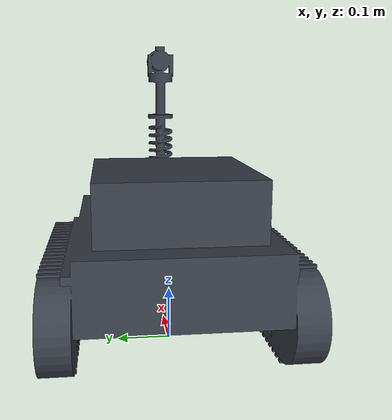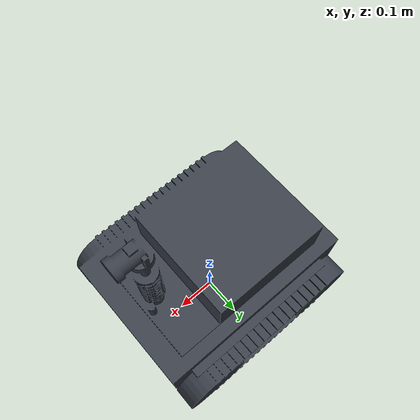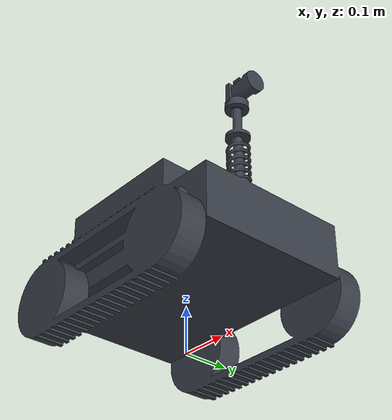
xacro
<?xml version="1.0"?>
<robot xmlns:xacro="http://www.ros.org/wiki/xacro" name="sih_bot">

  <!-- ============================ CONSTANTS ============================== -->
  <xacro:property name="PI" value="3.1415926535897931"/>
  <xacro:property name="robot_mass" value="25.0"/>
  <xacro:property name="wheel_radius" value="0.075"/>
  <xacro:property name="wheel_width" value="0.07"/>
  <xacro:property name="wheelbase" value="0.32"/>
  <xacro:property name="track_width" value="0.38"/>

  <!-- ============================ MATERIALS ============================== -->
  <material name="sih_charcoal">
    <color rgba="0.22 0.24 0.28 1.0"/>
  </material>
  <material name="signal_orange">
    <color rgba="1.0 0.45 0.0 1.0"/>
  </material>

  <!-- ============================ BASE FOOTPRINT ========================= -->
  <link name="base_footprint"/>

  <joint name="base_footprint_joint" type="fixed">
    <parent link="base_footprint"/>
    <child link="base_link"/>
    <origin xyz="0 0 ${wheel_radius + 0.02}" rpy="0 0 0"/>
  </joint>

  <!-- ============================ CHASSIS (SIH BOT MESH) ================= -->
  <link name="base_link">
    <visual>
      <origin xyz="0 0 -0.05" rpy="0 0 0"/>
      <geometry>
        <mesh filename="package://sih_bot/meshes/sih_bot.dae" scale="1.0 1.0 1.0"/>
      </geometry>
      <material name="sih_charcoal"/>
    </visual>
    <collision>
      <origin xyz="0 0 0.08" rpy="0 0 0"/>
      <geometry>
        <box size="0.45 0.35 0.16"/>
      </geometry>
    </collision>
    <inertial>
      <!-- Lowered Center of Mass for rock-solid stability -->
      <origin xyz="0 0 -0.04" rpy="0 0 0"/>
      <mass value="${robot_mass}"/>
      <inertia ixx="0.65" ixy="0.0" ixz="0.0" iyy="0.75" iyz="0.0" izz="0.95"/>
    </inertial>
  </link>

  <gazebo reference="base_link">
    <visual>
      <material>
        <ambient>0.25 0.28 0.32 1.0</ambient>
        <diffuse>0.35 0.38 0.42 1.0</diffuse>
        <specular>0.6 0.6 0.6 1.0</specular>
      </material>
    </visual>
  </gazebo>

  <!-- ============================ 4-WHEEL DRIVE TRACTION MACRO =========== -->
  <xacro:macro name="traction_wheel" params="prefix parent x_pos y_pos">
    <link name="${prefix}_wheel">
      <collision>
        <origin xyz="0 0 0" rpy="${PI/2} 0 0"/>
        <geometry>
          <cylinder radius="${wheel_radius}" length="${wheel_width}"/>
        </geometry>
      </collision>
      <inertial>
        <origin xyz="0 0 0" rpy="0 0 0"/>
        <mass value="1.5"/>
        <inertia ixx="0.004" ixy="0" ixz="0" iyy="0.004" iyz="0" izz="0.007"/>
      </inertial>
    </link>

    <joint name="${prefix}_wheel_joint" type="continuous">
      <parent link="${parent}"/>
      <child link="${prefix}_wheel"/>
      <origin xyz="${x_pos} ${y_pos} -0.02" rpy="0 0 0"/>
      <axis xyz="0 1 0"/>
      <limit effort="400.0" velocity="35.0"/>
      <dynamics damping="0.05" friction="0.02"/>
    </joint>

    <gazebo reference="${prefix}_wheel">
      <mu1>1.8</mu1>
      <mu2>0.05</mu2>
      <kp>1000000.0</kp>
      <kd>100.0</kd>
    </gazebo>
  </xacro:macro>

  <xacro:traction_wheel prefix="left_front"  parent="base_link" x_pos="${wheelbase/2}"  y_pos="${track_width/2}"/>
  <xacro:traction_wheel prefix="left_rear"   parent="base_link" x_pos="${-wheelbase/2}" y_pos="${track_width/2}"/>
  <xacro:traction_wheel prefix="right_front" parent="base_link" x_pos="${wheelbase/2}"  y_pos="${-track_width/2}"/>
  <xacro:traction_wheel prefix="right_rear"  parent="base_link" x_pos="${-wheelbase/2}" y_pos="${-track_width/2}"/>

  <!-- ============================ SENSORS ================================ -->
  <!-- 1. IMU -->
  <link name="imu_link">
    <inertial>
      <mass value="0.05"/>
      <inertia ixx="0.0001" ixy="0" ixz="0" iyy="0.0001" iyz="0" izz="0.0001"/>
    </inertial>
  </link>
  <joint name="imu_joint" type="fixed">
    <parent link="base_link"/>
    <child link="imu_link"/>
    <origin xyz="0 0 0.10" rpy="0 0 0"/>
  </joint>

  <!-- 2. LiDAR (360 SLAM) -->
  <link name="lidar_link">
    <inertial>
      <mass value="0.2"/>
      <inertia ixx="0.001" ixy="0" ixz="0" iyy="0.001" iyz="0" izz="0.001"/>
    </inertial>
  </link>
  <joint name="lidar_joint" type="fixed">
    <parent link="base_link"/>
    <child link="lidar_link"/>
    <origin xyz="0 0 0.46" rpy="0 0 0"/>
  </joint>

  <!-- 3. RGB-D Camera -->
  <link name="camera_link">
    <inertial>
      <mass value="0.15"/>
      <inertia ixx="0.001" ixy="0" ixz="0" iyy="0.001" iyz="0" izz="0.001"/>
    </inertial>
  </link>
  <joint name="camera_joint" type="fixed">
    <parent link="base_link"/>
    <child link="camera_link"/>
    <origin xyz="0.22 0 0.32" rpy="0 0.08 0"/>
  </joint>

  <link name="camera_optical_link"/>
  <joint name="camera_optical_joint" type="fixed">
    <parent link="camera_link"/>
    <child link="camera_optical_link"/>
    <origin xyz="0 0 0" rpy="${-PI/2} 0 ${-PI/2}"/>
  </joint>

  <!-- ============================ GAZEBO SENSORS & PLUGINS =============== -->
  <!-- IMU Sensor -->
  <gazebo reference="base_footprint">
    <sensor name="imu_sensor" type="imu">
      <always_on>true</always_on>
      <update_rate>100</update_rate>
      <topic>/imu/data</topic>
      <gz_frame_id>imu_link</gz_frame_id>
      <imu>
        <angular_velocity><x><noise type="gaussian"><mean>0</mean><stddev>0.001</stddev></noise></x></angular_velocity>
        <linear_acceleration><x><noise type="gaussian"><mean>0</mean><stddev>0.01</stddev></noise></x></linear_acceleration>
      </imu>
    </sensor>
  </gazebo>

  <!-- LiDAR Sensor -->
  <gazebo reference="base_footprint">
    <sensor name="lidar_sensor" type="gpu_lidar">
      <pose relative_to="base_footprint">0 0 0.54 0 0 0</pose>
      <topic>/scan</topic>
      <update_rate>20</update_rate>
      <ray>
        <scan>
          <horizontal>
            <samples>360</samples>
            <resolution>1</resolution>
            <min_angle>-3.14159</min_angle>
            <max_angle>3.14159</max_angle>
          </horizontal>
        </scan>
        <range>
          <min>0.15</min>
          <max>25.0</max>
          <resolution>0.01</resolution>
        </range>
      </ray>
      <always_on>true</always_on>
      <visualize>false</visualize>
      <gz_frame_id>lidar_link</gz_frame_id>
    </sensor>
  </gazebo>

  <!-- RGB-D Camera Sensor -->
  <gazebo reference="camera_link">
    <sensor name="rover_camera" type="rgbd_camera">
      <pose>0 0 0 0 0 0</pose>
      <camera>
        <horizontal_fov>1.3962634</horizontal_fov>
        <image><width>640</width><height>480</height><format>R8G8B8</format></image>
        <clip><near>0.1</near><far>30.0</far></clip>
        <depth_camera><clip><near>0.1</near><far>15.0</far></clip></depth_camera>
      </camera>
      <always_on>true</always_on>
      <update_rate>30</update_rate>
      <visualize>false</visualize>
      <topic>/camera</topic>
      <gz_frame_id>camera_optical_link</gz_frame_id>
    </sensor>
  </gazebo>

  <!-- 4-Wheel Synchronized DiffDrive Mobility System -->
  <gazebo>
    <plugin filename="gz-sim-diff-drive-system" name="gz::sim::systems::DiffDrive">
      <left_joint>left_front_wheel_joint</left_joint>
      <left_joint>left_rear_wheel_joint</left_joint>
      <right_joint>right_front_wheel_joint</right_joint>
      <right_joint>right_rear_wheel_joint</right_joint>
      <wheel_separation>${track_width}</wheel_separation>
      <wheel_radius>${wheel_radius}</wheel_radius>
      <max_linear_acceleration>2.5</max_linear_acceleration>
      <max_angular_acceleration>3.0</max_angular_acceleration>
      <max_linear_velocity>1.5</max_linear_velocity>
      <min_linear_velocity>-1.5</min_linear_velocity>
      <max_angular_velocity>2.0</max_angular_velocity>
      <min_angular_velocity>-2.0</min_angular_velocity>
      <topic>/cmd_vel</topic>
      <odom_topic>/odom</odom_topic>
      <frame_id>odom</frame_id>
      <child_frame_id>base_footprint</child_frame_id>
      <odom_publish_frequency>50</odom_publish_frequency>
    </plugin>

    <plugin filename="gz-sim-joint-state-publisher-system" name="gz::sim::systems::JointStatePublisher">
      <topic>/joint_states</topic>
      <update_rate>30</update_rate>
    </plugin>
  </gazebo>

</robot>
